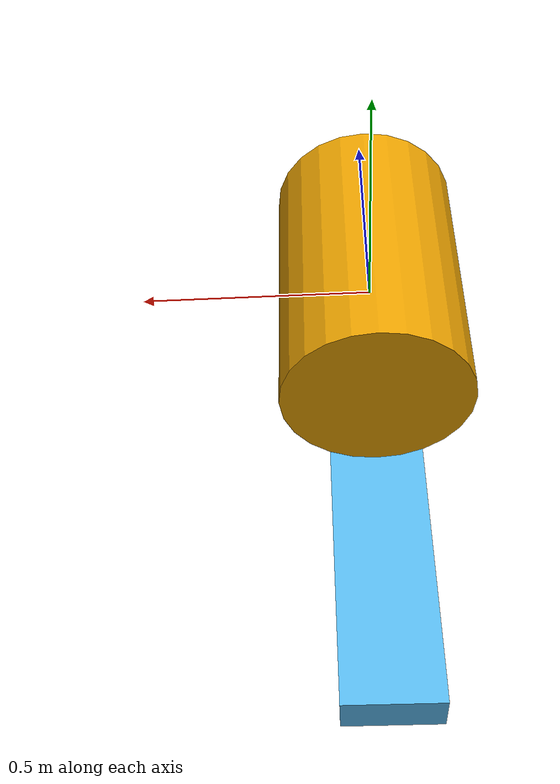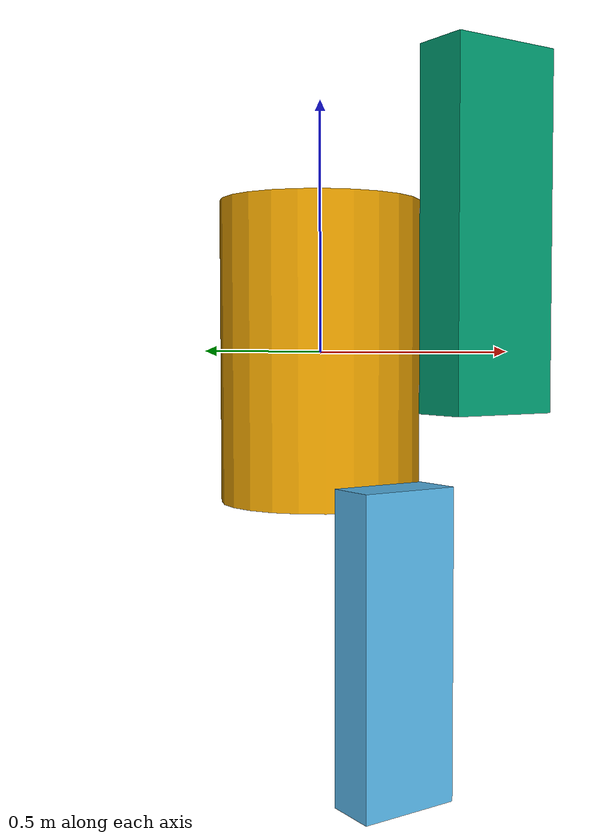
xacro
<?xml version="1.0"?>
<robot name="inmoov">
  <link name="base_link">
    <inertial>
      <origin xyz="0 0 0" rpy="0 0 0"/>
      <mass value="1"/>
      <inertia ixx="100"  ixy="0"  ixz="0" iyy="100" iyz="0" izz="100" />
    </inertial>
    <visual>
      <geometry>
        <cylinder length="0.6" radius="0.2"/> <!-- This ia the r2d2 cylinder.  The body of most robots -->
      </geometry>
    </visual>
  </link>

  <!-- Now we define a joint to link the two together -->
  <joint name="base_to_right_leg" type="continuous">
    <parent link="base_link"/>
    <child link="right_leg"/>
    <axis xyz="0.0 1.0 0.0"/>
    <origin xyz="0.0 -0.25 0.25"/>
    <limit lower="-1.0" upper="1.0" effort="1000.0" velocity="0.5"/>
  </joint>

  <link name="right_leg">
    <inertial>
      <origin xyz="0 0 0" rpy="0 0 0"/>
      <mass value="1"/>
      <inertia ixx="100"  ixy="0"  ixz="0" iyy="100" iyz="0" izz="100" />
    </inertial>

    <visual>
      <geometry>
        <box size="0.6 0.1 0.2"/>  <!-- this is a box that is 0.6m x 0.1m x 0.2m -->
      </geometry>
      <origin rpy="0 1.57075 0" xyz="0 0 -0.8"/>
    </visual>
  </link>

  <!-- Now we define a joint to link the two together -->
  <joint name="right_leg_to_right_foot" type="continuous">
    <parent link="right_leg"/>
    <child link="right_foot"/>
    <origin xyz="0.0 -0.25 0.25"/>
  </joint>

  <link name="right_foot">
    <inertial>
      <origin xyz="0 0 0" rpy="0 0 0"/>
      <mass value="1"/>
      <inertia ixx="100"  ixy="0"  ixz="0" iyy="100" iyz="0" izz="100" />
    </inertial>

    <visual>
      <geometry>
        <box size="0.6 0.1 0.2"/>  <!-- this is a box that is 0.6m x 0.1m x 0.2m -->
      </geometry>
      <origin rpy="0 1.57075 0" xyz="0 0 -0.3"/>
    </visual>
  </link>

</robot>
